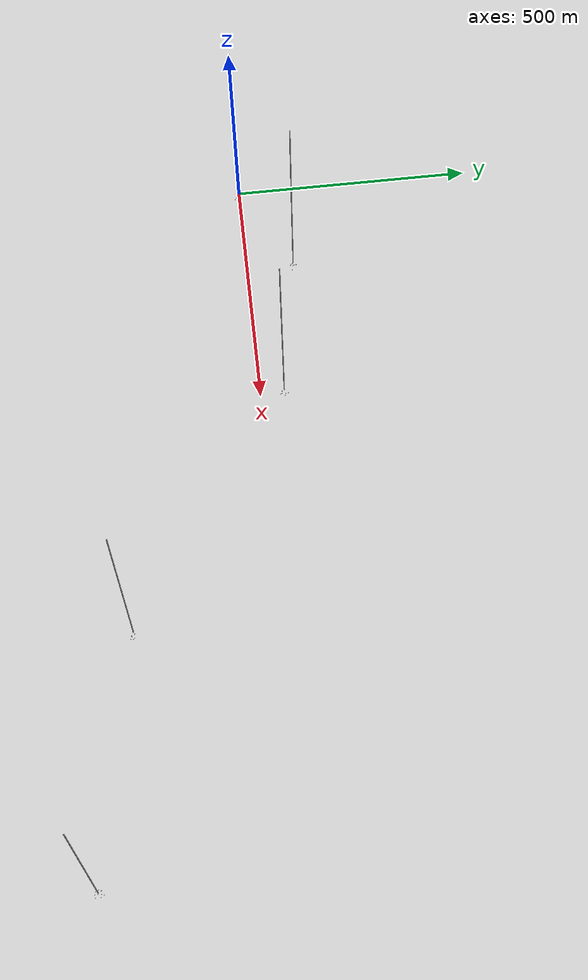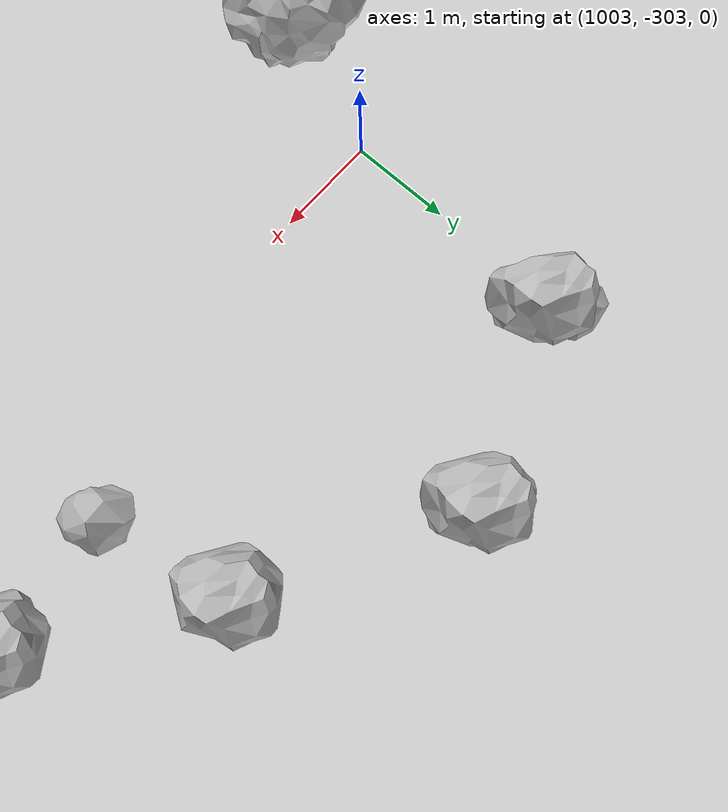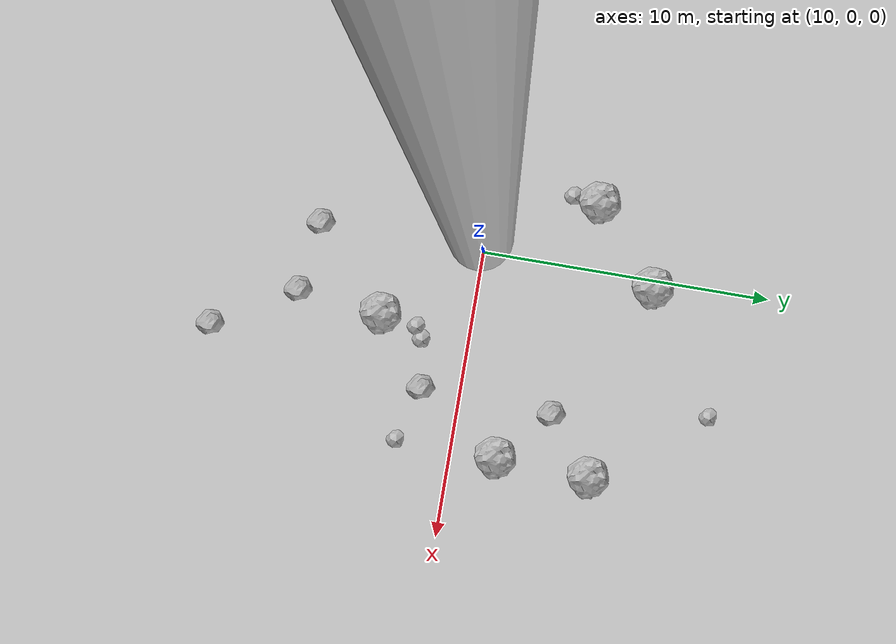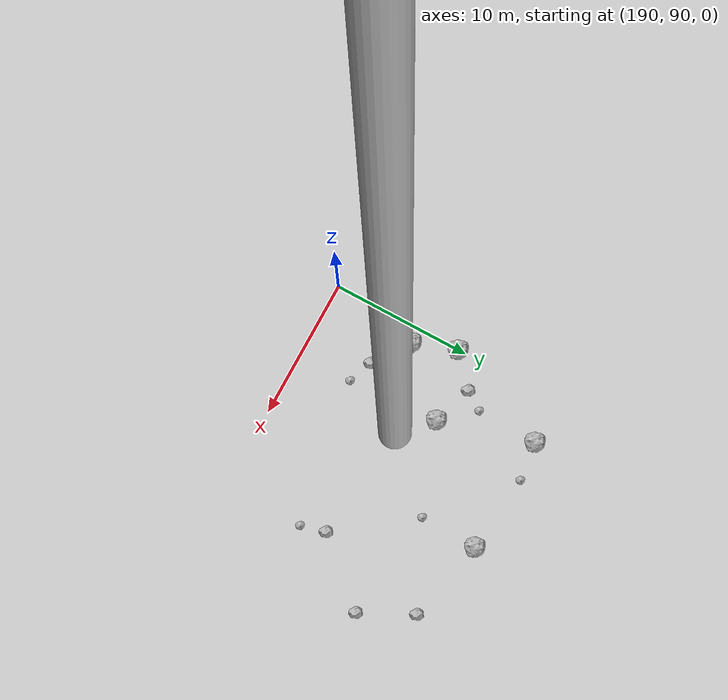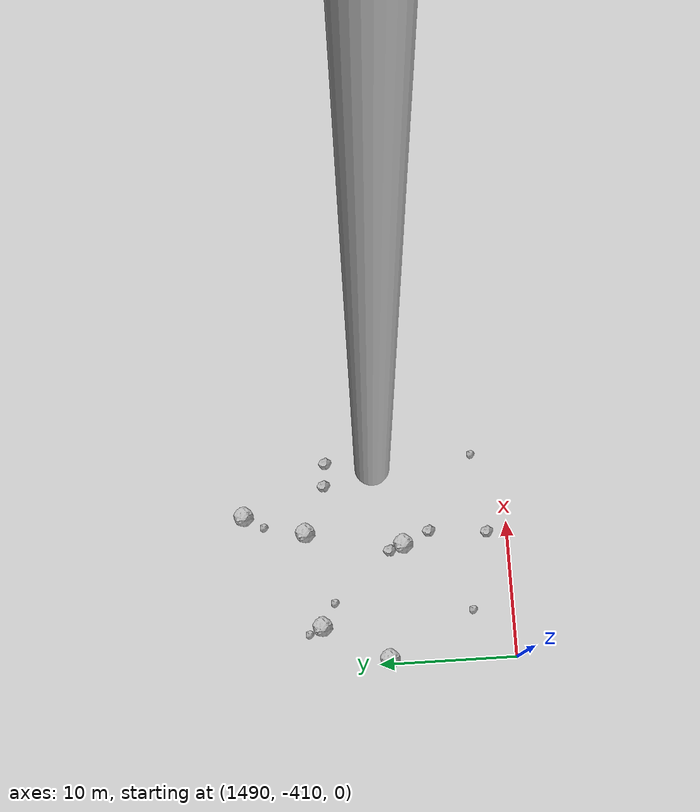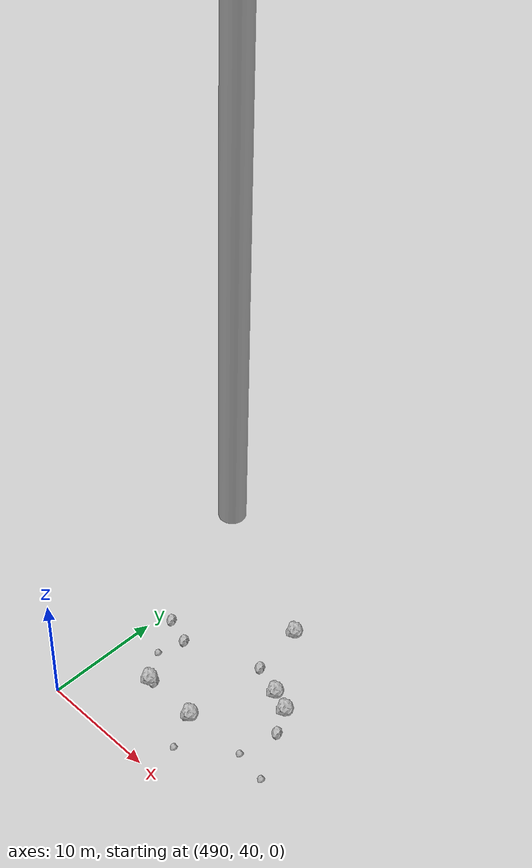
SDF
<?xml version="1.0" ?>
<sdf version="1.6">
  <world name="default">

    <include>
      <uri>model://custom_ground</uri>
    </include>

    <include>
      <uri>model://sun</uri>
    </include>

    <spherical_coordinates>
      <surface_model>EARTH_WGS84</surface_model>
      <latitude_deg>38.161479</latitude_deg>
      <longitude_deg>-122.454630</longitude_deg>
      <elevation>488.0</elevation>
      <heading_deg>90</heading_deg>
    </spherical_coordinates>

    <model name="rock1_0_0">
      <include>
        <uri>model://rock1</uri>
        <pose>16.96169044185299 1.582439389723838 0.5 0 0 0</pose>
      </include>
    </model>
    <model name="rock1_0_1">
      <include>
        <uri>model://rock1</uri>
        <pose>12.68551401015971 -3.154820259633782 0.5 0 0 0</pose>
      </include>
    </model>
    <model name="rock1_0_2">
      <include>
        <uri>model://rock1</uri>
        <pose>17.109643484305902 4.852501890940953 0.5 0 0 0</pose>
      </include>
    </model>
    <model name="rock1_0_3">
      <include>
        <uri>model://rock1</uri>
        <pose>7.67365480102117 3.688828038927154 0.5 0 0 0</pose>
      </include>
    </model>
    <model name="rock1_0_4">
      <include>
        <uri>model://rock1</uri>
        <pose>10.277220110166404 5.976161373862199 0.5 0 0 0</pose>
      </include>
    </model>
    <model name="rock2_0_0">
      <include>
        <uri>model://rock2</uri>
        <pose>13.94953400949811 -8.909351323812675 0.3 0 0 0</pose>
      </include>
    </model>
    <model name="rock2_0_1">
      <include>
        <uri>model://rock2</uri>
        <pose>12.30309624117474 -6.096789307848109 0.3 0 0 0</pose>
      </include>
    </model>
    <model name="rock2_0_2">
      <include>
        <uri>model://rock2</uri>
        <pose>14.961134939671823 -1.3615233222333938 0.3 0 0 0</pose>
      </include>
    </model>
    <model name="rock2_0_3">
      <include>
        <uri>model://rock2</uri>
        <pose>15.123061754440139 3.248132145367064 0.3 0 0 0</pose>
      </include>
    </model>
    <model name="rock2_0_4">
      <include>
        <uri>model://rock2</uri>
        <pose>9.881386784297376 -5.703203163376478 0.3 0 0 0</pose>
      </include>
    </model>
    <model name="rock3_0_0">
      <include>
        <uri>model://rock3</uri>
        <pose>16.865099995730226 -1.9513131838954756 0.2 0 0 0</pose>
      </include>
    </model>
    <model name="rock3_0_1">
      <include>
        <uri>model://rock3</uri>
        <pose>13.295443574537885 -1.636978199216701 0.2 0 0 0</pose>
      </include>
    </model>
    <model name="rock3_0_2">
      <include>
        <uri>model://rock3</uri>
        <pose>14.336488567943132 8.597437044052377 0.2 0 0 0</pose>
      </include>
    </model>
    <model name="rock3_0_3">
      <include>
        <uri>model://rock3</uri>
        <pose>7.54666623483208 2.741981209558965 0.2 0 0 0</pose>
      </include>
    </model>
    <model name="rock3_0_4">
      <include>
        <uri>model://rock3</uri>
        <pose>12.884348235389345 -1.8844952794190721 0.2 0 0 0</pose>
      </include>
    </model>
    <model name="rock1_1_0">
      <include>
        <uri>model://rock1</uri>
        <pose>193.2571570548383 107.03536868348537 0.5 0 0 0</pose>
      </include>
    </model>
    <model name="rock1_1_1">
      <include>
        <uri>model://rock1</uri>
        <pose>195.09831036879584 100.39915359245991 0.5 0 0 0</pose>
      </include>
    </model>
    <model name="rock1_1_2">
      <include>
        <uri>model://rock1</uri>
        <pose>201.54873514692525 106.83545102868334 0.5 0 0 0</pose>
      </include>
    </model>
    <model name="rock1_1_3">
      <include>
        <uri>model://rock1</uri>
        <pose>190.08247608548834 99.38482676350682 0.5 0 0 0</pose>
      </include>
    </model>
    <model name="rock1_1_4">
      <include>
        <uri>model://rock1</uri>
        <pose>191.1654109029992 96.31703954653601 0.5 0 0 0</pose>
      </include>
    </model>
    <model name="rock2_1_0">
      <include>
        <uri>model://rock2</uri>
        <pose>209.2489121814211 101.8919225437797 0.3 0 0 0</pose>
      </include>
    </model>
    <model name="rock2_1_1">
      <include>
        <uri>model://rock2</uri>
        <pose>193.69368631027265 94.55999837048819 0.3 0 0 0</pose>
      </include>
    </model>
    <model name="rock2_1_2">
      <include>
        <uri>model://rock2</uri>
        <pose>205.39289331872004 97.49168936976407 0.3 0 0 0</pose>
      </include>
    </model>
    <model name="rock2_1_3">
      <include>
        <uri>model://rock2</uri>
        <pose>192.20359079562667 101.35950816900647 0.3 0 0 0</pose>
      </include>
    </model>
    <model name="rock2_1_4">
      <include>
        <uri>model://rock2</uri>
        <pose>207.39090571907366 105.57574607491263 0.3 0 0 0</pose>
      </include>
    </model>
    <model name="rock3_1_0">
      <include>
        <uri>model://rock3</uri>
        <pose>205.8349956303979 95.6777845194735 0.2 0 0 0</pose>
      </include>
    </model>
    <model name="rock3_1_1">
      <include>
        <uri>model://rock3</uri>
        <pose>201.39265329632576 102.70826763625756 0.2 0 0 0</pose>
      </include>
    </model>
    <model name="rock3_1_2">
      <include>
        <uri>model://rock3</uri>
        <pose>195.42743988356216 93.85970128596865 0.2 0 0 0</pose>
      </include>
    </model>
    <model name="rock3_1_3">
      <include>
        <uri>model://rock3</uri>
        <pose>195.96510776401078 107.3783567915446 0.2 0 0 0</pose>
      </include>
    </model>
    <model name="rock3_1_4">
      <include>
        <uri>model://rock3</uri>
        <pose>193.06753958980875 102.64189089411977 0.2 0 0 0</pose>
      </include>
    </model>
    <model name="rock1_2_0">
      <include>
        <uri>model://rock1</uri>
        <pose>502.8065806561001 52.35723872557994 0.5 0 0 0</pose>
      </include>
    </model>
    <model name="rock1_2_1">
      <include>
        <uri>model://rock1</uri>
        <pose>499.53635917780394 45.81692058002565 0.5 0 0 0</pose>
      </include>
    </model>
    <model name="rock1_2_2">
      <include>
        <uri>model://rock1</uri>
        <pose>504.5918261108984 51.59992226183341 0.5 0 0 0</pose>
      </include>
    </model>
    <model name="rock1_2_3">
      <include>
        <uri>model://rock1</uri>
        <pose>494.55330938911516 46.010728507741455 0.5 0 0 0</pose>
      </include>
    </model>
    <model name="rock1_2_4">
      <include>
        <uri>model://rock1</uri>
        <pose>499.5432717634162 58.21027939237399 0.5 0 0 0</pose>
      </include>
    </model>
    <model name="rock2_2_0">
      <include>
        <uri>model://rock2</uri>
        <pose>505.7135325991762 49.496891905500526 0.3 0 0 0</pose>
      </include>
    </model>
    <model name="rock2_2_1">
      <include>
        <uri>model://rock2</uri>
        <pose>495.020654606213 46.09854988980502 0.3 0 0 0</pose>
      </include>
    </model>
    <model name="rock2_2_2">
      <include>
        <uri>model://rock2</uri>
        <pose>500.17156516035374 53.32732332680492 0.3 0 0 0</pose>
      </include>
    </model>
    <model name="rock2_2_3">
      <include>
        <uri>model://rock2</uri>
        <pose>491.1647702993809 51.734217338137604 0.3 0 0 0</pose>
      </include>
    </model>
    <model name="rock2_2_4">
      <include>
        <uri>model://rock2</uri>
        <pose>493.58691309699975 50.88759957578563 0.3 0 0 0</pose>
      </include>
    </model>
    <model name="rock3_2_0">
      <include>
        <uri>model://rock3</uri>
        <pose>499.39965718163484 45.43765768590208 0.2 0 0 0</pose>
      </include>
    </model>
    <model name="rock3_2_1">
      <include>
        <uri>model://rock3</uri>
        <pose>500.82778569401654 42.794871746315295 0.2 0 0 0</pose>
      </include>
    </model>
    <model name="rock3_2_2">
      <include>
        <uri>model://rock3</uri>
        <pose>492.8867855447543 48.49670509631273 0.2 0 0 0</pose>
      </include>
    </model>
    <model name="rock3_2_3">
      <include>
        <uri>model://rock3</uri>
        <pose>507.73455720854065 45.49194516292041 0.2 0 0 0</pose>
      </include>
    </model>
    <model name="rock3_2_4">
      <include>
        <uri>model://rock3</uri>
        <pose>504.92941113695747 46.01785545478633 0.2 0 0 0</pose>
      </include>
    </model>
    <model name="rock1_3_0">
      <include>
        <uri>model://rock1</uri>
        <pose>996.5722528151948 -299.3049786933195 0.5 0 0 0</pose>
      </include>
    </model>
    <model name="rock1_3_1">
      <include>
        <uri>model://rock1</uri>
        <pose>1002.4004389193284 -304.4018821648032 0.5 0 0 0</pose>
      </include>
    </model>
    <model name="rock1_3_2">
      <include>
        <uri>model://rock1</uri>
        <pose>1006.8676375722234 -307.12377613784747 0.5 0 0 0</pose>
      </include>
    </model>
    <model name="rock1_3_3">
      <include>
        <uri>model://rock1</uri>
        <pose>992.1277628831181 -301.421060999479 0.5 0 0 0</pose>
      </include>
    </model>
    <model name="rock1_3_4">
      <include>
        <uri>model://rock1</uri>
        <pose>999.842893167095 -305.9583574533457 0.5 0 0 0</pose>
      </include>
    </model>
    <model name="rock2_3_0">
      <include>
        <uri>model://rock2</uri>
        <pose>1008.4307178601907 -302.1737236720653 0.3 0 0 0</pose>
      </include>
    </model>
    <model name="rock2_3_1">
      <include>
        <uri>model://rock2</uri>
        <pose>1004.8922648545442 -299.962319231476 0.3 0 0 0</pose>
      </include>
    </model>
    <model name="rock2_3_2">
      <include>
        <uri>model://rock2</uri>
        <pose>1006.8729920190021 -301.01206182487095 0.3 0 0 0</pose>
      </include>
    </model>
    <model name="rock2_3_3">
      <include>
        <uri>model://rock2</uri>
        <pose>1003.1182148596885 -300.71152687961103 0.3 0 0 0</pose>
      </include>
    </model>
    <model name="rock2_3_4">
      <include>
        <uri>model://rock2</uri>
        <pose>1003.529330343628 -292.93501116033997 0.3 0 0 0</pose>
      </include>
    </model>
    <model name="rock3_3_0">
      <include>
        <uri>model://rock3</uri>
        <pose>1002.6448915153377 -292.48771903175617 0.2 0 0 0</pose>
      </include>
    </model>
    <model name="rock3_3_1">
      <include>
        <uri>model://rock3</uri>
        <pose>1002.9644444571104 -300.5240354905803 0.2 0 0 0</pose>
      </include>
    </model>
    <model name="rock3_3_2">
      <include>
        <uri>model://rock3</uri>
        <pose>994.2095082853159 -307.76535038612576 0.2 0 0 0</pose>
      </include>
    </model>
    <model name="rock3_3_3">
      <include>
        <uri>model://rock3</uri>
        <pose>1002.9440867509363 -306.5539815882677 0.2 0 0 0</pose>
      </include>
    </model>
    <model name="rock3_3_4">
      <include>
        <uri>model://rock3</uri>
        <pose>1007.1237525178508 -302.3341369112201 0.2 0 0 0</pose>
      </include>
    </model>
    <model name="rock1_4_0">
      <include>
        <uri>model://rock1</uri>
        <pose>1501.4920418346337 -390.53346187444356 0.5 0 0 0</pose>
      </include>
    </model>
    <model name="rock1_4_1">
      <include>
        <uri>model://rock1</uri>
        <pose>1493.0078072628553 -395.9819327227548 0.5 0 0 0</pose>
      </include>
    </model>
    <model name="rock1_4_2">
      <include>
        <uri>model://rock1</uri>
        <pose>1499.9945102187562 -395.0327217172412 0.5 0 0 0</pose>
      </include>
    </model>
    <model name="rock1_4_3">
      <include>
        <uri>model://rock1</uri>
        <pose>1498.7766839371861 -402.24028063864466 0.5 0 0 0</pose>
      </include>
    </model>
    <model name="rock1_4_4">
      <include>
        <uri>model://rock1</uri>
        <pose>1490.399585938231 -400.7506647442776 0.5 0 0 0</pose>
      </include>
    </model>
    <model name="rock2_4_0">
      <include>
        <uri>model://rock2</uri>
        <pose>1503.477168554526 -396.55944470998486 0.3 0 0 0</pose>
      </include>
    </model>
    <model name="rock2_4_1">
      <include>
        <uri>model://rock2</uri>
        <pose>1505.198754316323 -396.74776528700085 0.3 0 0 0</pose>
      </include>
    </model>
    <model name="rock2_4_2">
      <include>
        <uri>model://rock2</uri>
        <pose>1499.3266821160494 -408.489444015831 0.3 0 0 0</pose>
      </include>
    </model>
    <model name="rock2_4_3">
      <include>
        <uri>model://rock2</uri>
        <pose>1498.3371106033367 -401.21317976650647 0.3 0 0 0</pose>
      </include>
    </model>
    <model name="rock2_4_4">
      <include>
        <uri>model://rock2</uri>
        <pose>1499.6318326373241 -404.19769869953274 0.3 0 0 0</pose>
      </include>
    </model>
    <model name="rock3_4_0">
      <include>
        <uri>model://rock3</uri>
        <pose>1505.2639921228943 -407.755785983803 0.2 0 0 0</pose>
      </include>
    </model>
    <model name="rock3_4_1">
      <include>
        <uri>model://rock3</uri>
        <pose>1494.649889810945 -396.98619592891214 0.2 0 0 0</pose>
      </include>
    </model>
    <model name="rock3_4_2">
      <include>
        <uri>model://rock3</uri>
        <pose>1500.5763486064334 -391.99982973253816 0.2 0 0 0</pose>
      </include>
    </model>
    <model name="rock3_4_3">
      <include>
        <uri>model://rock3</uri>
        <pose>1492.4515403917208 -395.0235542030002 0.2 0 0 0</pose>
      </include>
    </model>
    <model name="rock3_4_4">
      <include>
        <uri>model://rock3</uri>
        <pose>1493.5798395255904 -407.08839977348146 0.2 0 0 0</pose>
      </include>
    </model>

    <model name="cylinder_1">
      <static>true</static>
      <link name="link">
        <visual name="visual">
          <geometry>
            <cylinder>
              <radius>1</radius>
              <length>500</length>
            </cylinder>
          </geometry>
        </visual>
      </link>
      <pose>10 0 270 0 0 0</pose>
    </model>

    <model name="cylinder_2">
      <static>true</static>
      <link name="link">
        <visual name="visual">
          <geometry>
            <cylinder>
              <radius>1</radius>
              <length>500</length>
            </cylinder>
          </geometry>
        </visual>
      </link>
      <pose>200 100 270 0 0 0</pose>
    </model>

    <model name="cylinder_3">
      <static>true</static>
      <link name="link">
        <visual name="visual">
          <geometry>
            <cylinder>
              <radius>1</radius>
              <length>500</length>
            </cylinder>
          </geometry>
        </visual>
      </link>
      <pose>500 50 270 0 0 0</pose>
    </model>

    <model name="cylinder_4">
      <static>true</static>
      <link name="link">
        <visual name="visual">
          <geometry>
            <cylinder>
              <radius>1</radius>
              <length>500</length>
            </cylinder>
          </geometry>
        </visual>
      </link>
      <pose>1000 -300 270 0 0 0</pose>
    </model>

    <model name="cylinder_5">
      <static>true</static>
      <link name="link">
        <visual name="visual">
          <geometry>
            <cylinder>
              <radius>1</radius>
              <length>500</length>
            </cylinder>
          </geometry>
        </visual>
      </link>
      <pose>1500 -400 270 0 0 0</pose>
    </model>

  </world>
</sdf>

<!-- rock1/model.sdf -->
<sdf version="1.6">
  <model name="rock1">
    <static>true</static> <!-- Set to true if the model should not move -->
    <pose>0 0 0 0 0 0</pose>

    <!--z offset is 0.5 for full scale-->

    <link name="link">
      <collision name="rock1_collision">
        <geometry>
          <mesh>
            <uri>model://meshes/rock1.dae</uri>
          </mesh>
        </geometry>
      </collision>
      <visual name="rock1_visual">
        <geometry>
          <mesh>
            <uri>model://meshes/rock1.dae</uri>
          </mesh>
        </geometry>
        <material>
          <script>
            <uri>model://materials/scripts/sand_pebbles.material</uri>
            <name>custom_ground/Image</name>
          </script>
        </material>
      </visual>
    </link>
  </model>
</sdf>

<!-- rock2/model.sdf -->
<sdf version="1.6">
  <model name="rock2">
    <static>true</static> <!-- Set to true if the model should not move -->
    <pose>0 0 0 0 0 0</pose>

    <!--z offset is 0.3 for full scale-->

    <link name="link">
      <collision name="rock2_collision">
        <geometry>
          <mesh>
            <uri>model://meshes/rock2.dae</uri>
          </mesh>
        </geometry>
      </collision>
      <visual name="rock2_visual">
        <geometry>
          <mesh>
            <uri>model://meshes/rock2.dae</uri>
          </mesh>
        </geometry>
        <material>
          <script>
            <uri>model://materials/scripts/sand_pebbles.material</uri>
            <name>custom_ground/Image</name>
          </script>
        </material>
      </visual>
    </link>
  </model>
</sdf>

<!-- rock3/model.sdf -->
<sdf version="1.6">
  <model name="rock3">
    <static>true</static> <!-- Set to true if the model should not move -->
    <pose>0 0 0 0 0 0</pose>

    <!--z offset is 0.2 for full scale-->

    <link name="link">
      <collision name="rock3_collision">
        <geometry>
          <mesh>
            <uri>model://meshes/rock3.dae</uri>
          </mesh>
        </geometry>
      </collision>
      <visual name="rock3_visual">
        <geometry>
          <mesh>
            <uri>model://meshes/rock3.dae</uri>
          </mesh>
        </geometry>
        <material>
          <script>
            <uri>model://materials/scripts/sand_pebbles.material</uri>
            <name>custom_ground/Image</name>
          </script>
        </material>
      </visual>
    </link>
  </model>
</sdf>

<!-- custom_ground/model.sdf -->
<sdf version="1.6">
  <model name="custom_ground">
    <static>true</static> <!-- Ground is static and immovable -->
    <link name="ground_link">
      <pose>240 0 0 0 0 0</pose> <!-- Position and orientation relative to the world -->
      <!-- Visual Representation -->
      <visual name="ground_visual">
        <geometry>
          <plane>
            <normal>0 0 1</normal> <!-- Upward facing plane -->
            <size>500 500</size> <!-- Size of the plane -->
          </plane>
        </geometry>
        <material>
          <script>
            <uri>model://materials/scripts/sand_pebbles.material</uri>
            <name>custom_ground/Image</name>
          </script>
        </material>
      </visual>

      <!-- Collision Representation -->
      <collision name="ground_collision">
        <geometry>
          <plane>
            <normal>0 0 1</normal>
            <size>100 100</size>
          </plane>
        </geometry>
      </collision>

    </link>
  </model>
</sdf>
